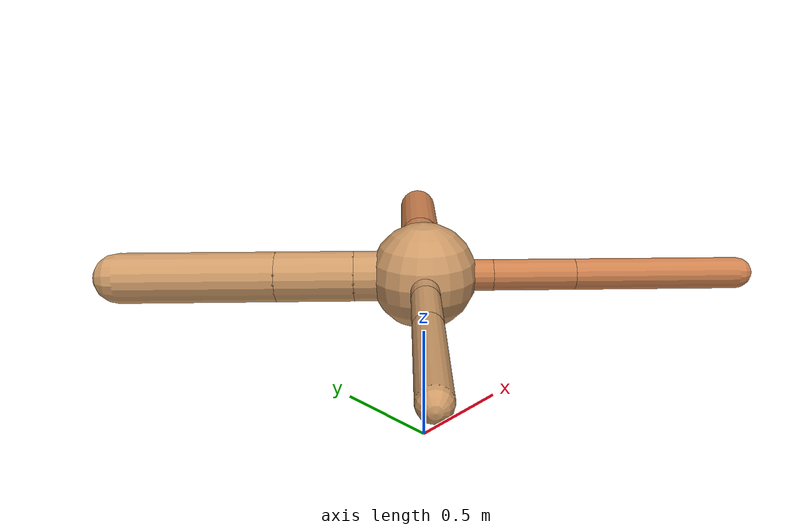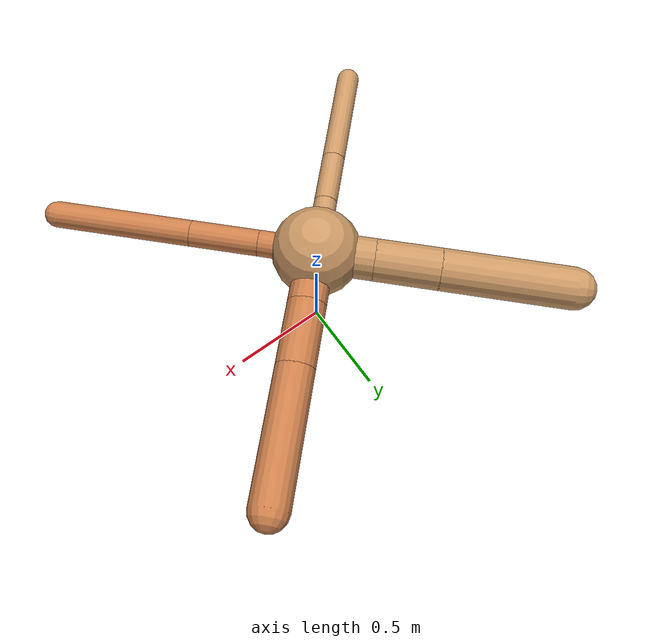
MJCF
<?xml version="1.0" ?>
<mujoco model="ant">

	<compiler angle="degree" coordinate="local" inertiafromgeom="true"/>

	<option integrator="RK4" timestep="0.01"/>

	<custom>

		<numeric data="0.0 0.0 0.55 1.0 0.0 0.0 0.0 0.0 1.0 0.0 -1.0 0.0 -1.0 0.0 1.0" name="init_qpos"/>

	</custom>

	<default>

		<joint armature="1" damping="1" limited="true"/>

		<geom conaffinity="0" condim="3" density="5.0" friction="1.5 0.1 0.1" margin="0.01" rgba="0.8 0.6 0.4 1"/>

	</default>

	<worldbody>

		<body name="torso" pos="0 0 0.75">

			<geom name="torso_geom" pos="0 0 0" size="0.21844532648843662" type="sphere"/>

			<!--joint armature="0" damping="0" limited="false" margin="0.01" name="root" pos="0 0 0" type="free"/-->

			<body name="front_left_leg" pos="0 0 0">

				<geom fromto="0 0 0 0.2 0.2 0" name="aux_1_geom" size="0.09406558735133491" type="capsule" rgba=".8 .5 .3 1"/>

				<body name="aux_1" pos="0.2 0.2 0">

					<joint axis="0 0 1" name="hip_1" pos="0.0 0.0 0.0" range="-40 40" type="hinge"/>

					<geom fromto="0 0 0 0.22384518845624904 0.22384518845624904 0" name="left_leg_geom" size="0.09406558735133491" type="capsule" rgba=".8 .5 .3 1"/>

					<body pos="0.22384518845624904 0.22384518845624904 0" name="front_left_foot">

						<joint axis="-1 1 0" name="ankle_1" pos="0.0 0.0 0.0" range="30 100" type="hinge"/>

						<geom fromto="0 0 0 0.4476903769124981 0.4476903769124981 0" name="left_ankle_geom" size="0.09406558735133491" type="capsule" rgba=".8 .5 .3 1"/>

					</body>

				</body>

			</body>

			<body name="front_right_leg" pos="0 0 0">

				<geom fromto="0 0 0 -0.2 0.2 0" name="aux_2_geom" size="0.10343121043837344" type="capsule"/>

				<body name="aux_2" pos="-0.2 0.2 0">

					<joint axis="0 0 1" name="hip_2" pos="0.0 0.0 0.0" range="-40 40" type="hinge"/>

					<geom fromto="0 0 0 -0.22371654109550643 0.22371654109550643 0" name="right_leg_geom" size="0.10343121043837344" type="capsule"/>

					<body pos="-0.22371654109550643 0.22371654109550643 0" name="front_right_foot">

						<joint axis="1 1 0" name="ankle_2" pos="0.0 0.0 0.0" range="-100 -30" type="hinge"/>

						<geom fromto="0 0 0 -0.44743308219101285 0.44743308219101285 0" name="right_ankle_geom" size="0.10343121043837344" type="capsule"/>

					</body>

				</body>

			</body>

			<body name="left_back_leg" pos="0 0 0">

				<geom fromto="0 0 0 -0.2 -0.2 0" name="aux_3_geom" size="0.05695069036235626" type="capsule"/>

				<body name="aux_3" pos="-0.2 -0.2 0">

					<joint axis="0 0 1" name="hip_3" pos="0.0 0.0 0.0" range="-40 40" type="hinge"/>

					<geom fromto="0 0 0 -0.18418780403900725 -0.18418780403900725 0" name="back_leg_geom" size="0.05695069036235626" type="capsule"/>

					<body pos="-0.18418780403900725 -0.18418780403900725 0" name="left_back_foot">

						<joint axis="-1 1 0" name="ankle_3" pos="0.0 0.0 0.0" range="-100 -30" type="hinge"/>

						<geom fromto="0 0 0 -0.3683756080780145 -0.3683756080780145 0" name="third_ankle_geom" size="0.05695069036235626" type="capsule"/>

					</body>

				</body>

			</body>

			<body name="right_back_leg" pos="0 0 0">

				<geom fromto="0 0 0 0.2 -0.2 0" name="aux_4_geom" size="0.06433500552002261" type="capsule" rgba=".8 .5 .3 1"/>

				<body name="aux_4" pos="0.2 -0.2 0">

					<joint axis="0 0 1" name="hip_4" pos="0.0 0.0 0.0" range="-40 40" type="hinge"/>

					<geom fromto="0 0 0 0.23817174124131368 -0.23817174124131368 0" name="rightback_leg_geom" size="0.06433500552002261" type="capsule" rgba=".8 .5 .3 1"/>

					<body pos="0.23817174124131368 -0.23817174124131368 0" name="right_back_foot">

						<joint axis="1 1 0" name="ankle_4" pos="0.0 0.0 0.0" range="30 100" type="hinge"/>

						<geom fromto="0 0 0 0.47634348248262737 -0.47634348248262737 0" name="fourth_ankle_geom" size="0.06433500552002261" type="capsule" rgba=".8 .5 .3 1"/>

					</body>

				</body>

			</body>

		</body>

	</worldbody>

	<actuator>

		<motor ctrllimited="true" ctrlrange="-1.0 1.0" joint="hip_4" gear="150"/>

		<motor ctrllimited="true" ctrlrange="-1.0 1.0" joint="ankle_4" gear="150"/>

		<motor ctrllimited="true" ctrlrange="-1.0 1.0" joint="hip_1" gear="150"/>

		<motor ctrllimited="true" ctrlrange="-1.0 1.0" joint="ankle_1" gear="150"/>

		<motor ctrllimited="true" ctrlrange="-1.0 1.0" joint="hip_2" gear="150"/>

		<motor ctrllimited="true" ctrlrange="-1.0 1.0" joint="ankle_2" gear="150"/>

		<motor ctrllimited="true" ctrlrange="-1.0 1.0" joint="hip_3" gear="150"/>

		<motor ctrllimited="true" ctrlrange="-1.0 1.0" joint="ankle_3" gear="150"/>

	</actuator>

</mujoco>
